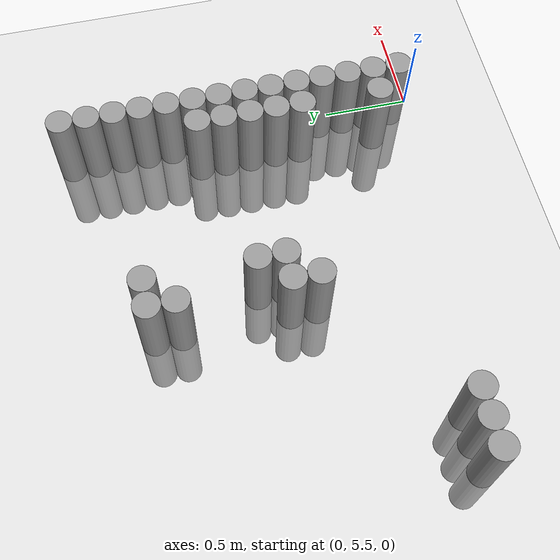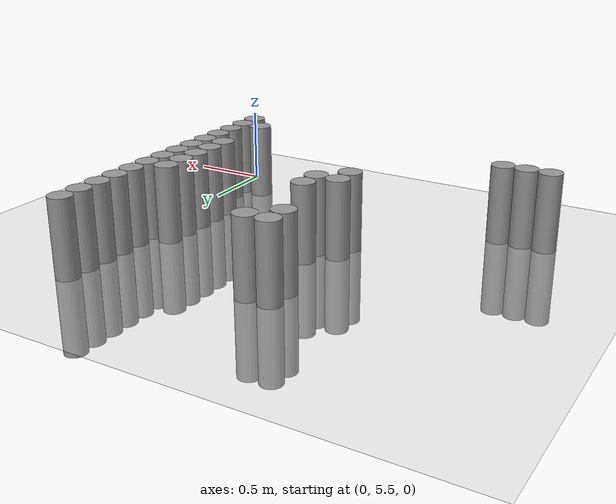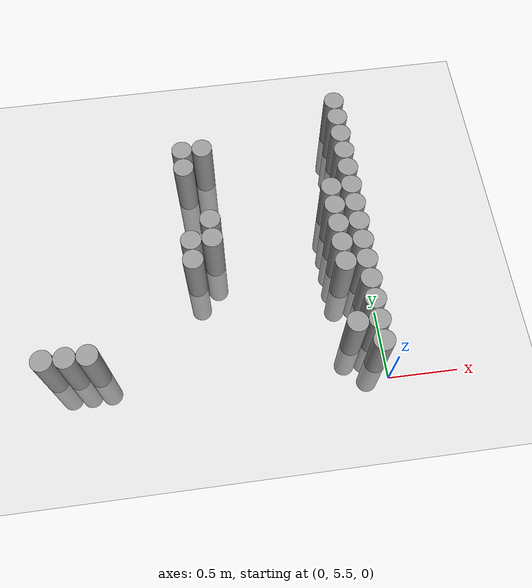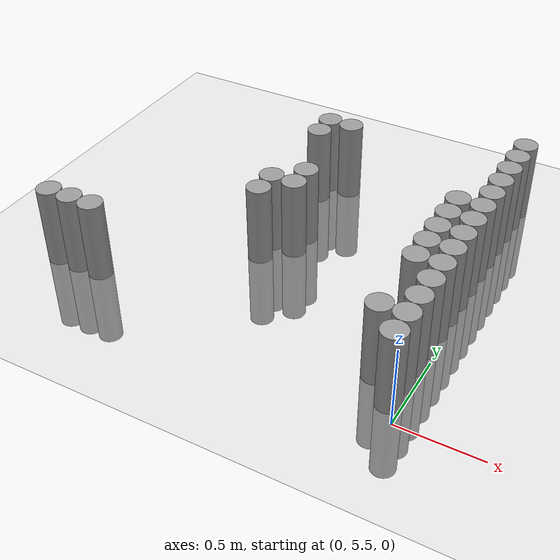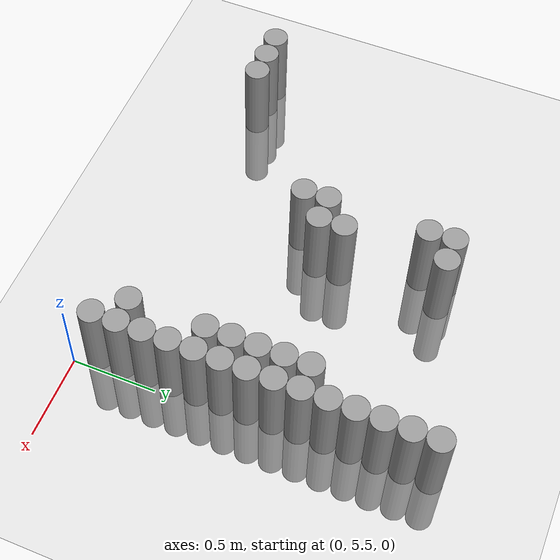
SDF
<sdf version="1.6">
 <world name="default">
  <model name="ground_plane">
   <static>1</static>
   <static>1</static>
   <link name="link">
    <collision name="collision">
     <geometry><plane><normal>0 0 1</normal><size>100 100</size></plane></geometry>
     <surface><friction><ode><mu>100</mu><mu2>50</mu2></ode></friction></surface>
    </collision>
    <visual name="visual">
     <cast_shadows>0</cast_shadows>
     <geometry><plane><normal>0 0 1</normal><size>100 100</size></plane></geometry>
     <material>
      <script><uri>file://media/materials/scripts/gazebo.material</uri><name>Gazebo/Grey</name></script>
     </material>
    </visual>
   </link>
  </model>
  <model name="unit_cylinder_169">
   <static>1</static>
   <pose>-2.325000 5.775000 0.000000 0.000000 0.000000 0.000000</pose>
   <link name="link">
    <inertial>
     <mass>1</mass>
     <inertia><ixx>0.145833</ixx><ixy>0</ixy><ixz>0</ixz><iyy>0.145833</iyy><iyz>0</iyz><izz>0.125</izz></inertia>
    </inertial>
    <collision name="collision">
     <geometry><cylinder><radius>0.075000</radius><length>1</length></cylinder></geometry>
    </collision>
    <visual name="visual">
     <geometry><cylinder><radius>0.075000</radius><length>1</length></cylinder></geometry>
     <material>
      <script><name>Gazebo/Grey</name><uri>file://media/materials/scripts/gazebo.material</uri></script>
     </material>
    </visual>
   </link>
  </model>
  <model name="unit_cylinder_174">
   <static>1</static>
   <pose>-2.175000 5.775000 0.000000 0.000000 0.000000 0.000000</pose>
   <link name="link">
    <inertial>
     <mass>1</mass>
     <inertia><ixx>0.145833</ixx><ixy>0</ixy><ixz>0</ixz><iyy>0.145833</iyy><iyz>0</iyz><izz>0.125</izz></inertia>
    </inertial>
    <collision name="collision">
     <geometry><cylinder><radius>0.075000</radius><length>1</length></cylinder></geometry>
    </collision>
    <visual name="visual">
     <geometry><cylinder><radius>0.075000</radius><length>1</length></cylinder></geometry>
     <material>
      <script><name>Gazebo/Grey</name><uri>file://media/materials/scripts/gazebo.material</uri></script>
     </material>
    </visual>
   </link>
  </model>
  <model name="unit_cylinder_177">
   <static>1</static>
   <pose>-2.025000 5.775000 0.000000 0.000000 0.000000 0.000000</pose>
   <link name="link">
    <inertial>
     <mass>1</mass>
     <inertia><ixx>0.145833</ixx><ixy>0</ixy><ixz>0</ixz><iyy>0.145833</iyy><iyz>0</iyz><izz>0.125</izz></inertia>
    </inertial>
    <collision name="collision">
     <geometry><cylinder><radius>0.075000</radius><length>1</length></cylinder></geometry>
    </collision>
    <visual name="visual">
     <geometry><cylinder><radius>0.075000</radius><length>1</length></cylinder></geometry>
     <material>
      <script><name>Gazebo/Grey</name><uri>file://media/materials/scripts/gazebo.material</uri></script>
     </material>
    </visual>
   </link>
  </model>
  <model name="unit_cylinder_183">
   <static>1</static>
   <pose>-1.275000 6.375000 0.000000 0.000000 0.000000 0.000000</pose>
   <link name="link">
    <inertial>
     <mass>1</mass>
     <inertia><ixx>0.145833</ixx><ixy>0</ixy><ixz>0</ixz><iyy>0.145833</iyy><iyz>0</iyz><izz>0.125</izz></inertia>
    </inertial>
    <collision name="collision">
     <geometry><cylinder><radius>0.075000</radius><length>1</length></cylinder></geometry>
    </collision>
    <visual name="visual">
     <geometry><cylinder><radius>0.075000</radius><length>1</length></cylinder></geometry>
     <material>
      <script><name>Gazebo/Grey</name><uri>file://media/materials/scripts/gazebo.material</uri></script>
     </material>
    </visual>
   </link>
  </model>
  <model name="unit_cylinder_184">
   <static>1</static>
   <pose>-1.275000 6.525000 0.000000 0.000000 0.000000 0.000000</pose>
   <link name="link">
    <inertial>
     <mass>1</mass>
     <inertia><ixx>0.145833</ixx><ixy>0</ixy><ixz>0</ixz><iyy>0.145833</iyy><iyz>0</iyz><izz>0.125</izz></inertia>
    </inertial>
    <collision name="collision">
     <geometry><cylinder><radius>0.075000</radius><length>1</length></cylinder></geometry>
    </collision>
    <visual name="visual">
     <geometry><cylinder><radius>0.075000</radius><length>1</length></cylinder></geometry>
     <material>
      <script><name>Gazebo/Grey</name><uri>file://media/materials/scripts/gazebo.material</uri></script>
     </material>
    </visual>
   </link>
  </model>
  <model name="unit_cylinder_185">
   <static>1</static>
   <pose>-1.275000 7.125000 0.000000 0.000000 0.000000 0.000000</pose>
   <link name="link">
    <inertial>
     <mass>1</mass>
     <inertia><ixx>0.145833</ixx><ixy>0</ixy><ixz>0</ixz><iyy>0.145833</iyy><iyz>0</iyz><izz>0.125</izz></inertia>
    </inertial>
    <collision name="collision">
     <geometry><cylinder><radius>0.075000</radius><length>1</length></cylinder></geometry>
    </collision>
    <visual name="visual">
     <geometry><cylinder><radius>0.075000</radius><length>1</length></cylinder></geometry>
     <material>
      <script><name>Gazebo/Grey</name><uri>file://media/materials/scripts/gazebo.material</uri></script>
     </material>
    </visual>
   </link>
  </model>
  <model name="unit_cylinder_186">
   <static>1</static>
   <pose>-1.275000 7.275000 0.000000 0.000000 0.000000 0.000000</pose>
   <link name="link">
    <inertial>
     <mass>1</mass>
     <inertia><ixx>0.145833</ixx><ixy>0</ixy><ixz>0</ixz><iyy>0.145833</iyy><iyz>0</iyz><izz>0.125</izz></inertia>
    </inertial>
    <collision name="collision">
     <geometry><cylinder><radius>0.075000</radius><length>1</length></cylinder></geometry>
    </collision>
    <visual name="visual">
     <geometry><cylinder><radius>0.075000</radius><length>1</length></cylinder></geometry>
     <material>
      <script><name>Gazebo/Grey</name><uri>file://media/materials/scripts/gazebo.material</uri></script>
     </material>
    </visual>
   </link>
  </model>
  <model name="unit_cylinder_187">
   <static>1</static>
   <pose>-1.125000 6.525000 0.000000 0.000000 0.000000 0.000000</pose>
   <link name="link">
    <inertial>
     <mass>1</mass>
     <inertia><ixx>0.145833</ixx><ixy>0</ixy><ixz>0</ixz><iyy>0.145833</iyy><iyz>0</iyz><izz>0.125</izz></inertia>
    </inertial>
    <collision name="collision">
     <geometry><cylinder><radius>0.075000</radius><length>1</length></cylinder></geometry>
    </collision>
    <visual name="visual">
     <geometry><cylinder><radius>0.075000</radius><length>1</length></cylinder></geometry>
     <material>
      <script><name>Gazebo/Grey</name><uri>file://media/materials/scripts/gazebo.material</uri></script>
     </material>
    </visual>
   </link>
  </model>
  <model name="unit_cylinder_188">
   <static>1</static>
   <pose>-1.125000 6.675000 0.000000 0.000000 0.000000 0.000000</pose>
   <link name="link">
    <inertial>
     <mass>1</mass>
     <inertia><ixx>0.145833</ixx><ixy>0</ixy><ixz>0</ixz><iyy>0.145833</iyy><iyz>0</iyz><izz>0.125</izz></inertia>
    </inertial>
    <collision name="collision">
     <geometry><cylinder><radius>0.075000</radius><length>1</length></cylinder></geometry>
    </collision>
    <visual name="visual">
     <geometry><cylinder><radius>0.075000</radius><length>1</length></cylinder></geometry>
     <material>
      <script><name>Gazebo/Grey</name><uri>file://media/materials/scripts/gazebo.material</uri></script>
     </material>
    </visual>
   </link>
  </model>
  <model name="unit_cylinder_189">
   <static>1</static>
   <pose>-1.125000 7.275000 0.000000 0.000000 0.000000 0.000000</pose>
   <link name="link">
    <inertial>
     <mass>1</mass>
     <inertia><ixx>0.145833</ixx><ixy>0</ixy><ixz>0</ixz><iyy>0.145833</iyy><iyz>0</iyz><izz>0.125</izz></inertia>
    </inertial>
    <collision name="collision">
     <geometry><cylinder><radius>0.075000</radius><length>1</length></cylinder></geometry>
    </collision>
    <visual name="visual">
     <geometry><cylinder><radius>0.075000</radius><length>1</length></cylinder></geometry>
     <material>
      <script><name>Gazebo/Grey</name><uri>file://media/materials/scripts/gazebo.material</uri></script>
     </material>
    </visual>
   </link>
  </model>
  <model name="unit_cylinder_200">
   <static>1</static>
   <pose>-0.225000 5.775000 0.000000 0.000000 0.000000 0.000000</pose>
   <link name="link">
    <inertial>
     <mass>1</mass>
     <inertia><ixx>0.145833</ixx><ixy>0</ixy><ixz>0</ixz><iyy>0.145833</iyy><iyz>0</iyz><izz>0.125</izz></inertia>
    </inertial>
    <collision name="collision">
     <geometry><cylinder><radius>0.075000</radius><length>1</length></cylinder></geometry>
    </collision>
    <visual name="visual">
     <geometry><cylinder><radius>0.075000</radius><length>1</length></cylinder></geometry>
     <material>
      <script><name>Gazebo/Grey</name><uri>file://media/materials/scripts/gazebo.material</uri></script>
     </material>
    </visual>
   </link>
  </model>
  <model name="unit_cylinder_201">
   <static>1</static>
   <pose>-0.225000 6.225000 0.000000 0.000000 0.000000 0.000000</pose>
   <link name="link">
    <inertial>
     <mass>1</mass>
     <inertia><ixx>0.145833</ixx><ixy>0</ixy><ixz>0</ixz><iyy>0.145833</iyy><iyz>0</iyz><izz>0.125</izz></inertia>
    </inertial>
    <collision name="collision">
     <geometry><cylinder><radius>0.075000</radius><length>1</length></cylinder></geometry>
    </collision>
    <visual name="visual">
     <geometry><cylinder><radius>0.075000</radius><length>1</length></cylinder></geometry>
     <material>
      <script><name>Gazebo/Grey</name><uri>file://media/materials/scripts/gazebo.material</uri></script>
     </material>
    </visual>
   </link>
  </model>
  <model name="unit_cylinder_202">
   <static>1</static>
   <pose>-0.225000 6.375000 0.000000 0.000000 0.000000 0.000000</pose>
   <link name="link">
    <inertial>
     <mass>1</mass>
     <inertia><ixx>0.145833</ixx><ixy>0</ixy><ixz>0</ixz><iyy>0.145833</iyy><iyz>0</iyz><izz>0.125</izz></inertia>
    </inertial>
    <collision name="collision">
     <geometry><cylinder><radius>0.075000</radius><length>1</length></cylinder></geometry>
    </collision>
    <visual name="visual">
     <geometry><cylinder><radius>0.075000</radius><length>1</length></cylinder></geometry>
     <material>
      <script><name>Gazebo/Grey</name><uri>file://media/materials/scripts/gazebo.material</uri></script>
     </material>
    </visual>
   </link>
  </model>
  <model name="unit_cylinder_203">
   <static>1</static>
   <pose>-0.225000 6.525000 0.000000 0.000000 0.000000 0.000000</pose>
   <link name="link">
    <inertial>
     <mass>1</mass>
     <inertia><ixx>0.145833</ixx><ixy>0</ixy><ixz>0</ixz><iyy>0.145833</iyy><iyz>0</iyz><izz>0.125</izz></inertia>
    </inertial>
    <collision name="collision">
     <geometry><cylinder><radius>0.075000</radius><length>1</length></cylinder></geometry>
    </collision>
    <visual name="visual">
     <geometry><cylinder><radius>0.075000</radius><length>1</length></cylinder></geometry>
     <material>
      <script><name>Gazebo/Grey</name><uri>file://media/materials/scripts/gazebo.material</uri></script>
     </material>
    </visual>
   </link>
  </model>
  <model name="unit_cylinder_204">
   <static>1</static>
   <pose>-0.225000 6.675000 0.000000 0.000000 0.000000 0.000000</pose>
   <link name="link">
    <inertial>
     <mass>1</mass>
     <inertia><ixx>0.145833</ixx><ixy>0</ixy><ixz>0</ixz><iyy>0.145833</iyy><iyz>0</iyz><izz>0.125</izz></inertia>
    </inertial>
    <collision name="collision">
     <geometry><cylinder><radius>0.075000</radius><length>1</length></cylinder></geometry>
    </collision>
    <visual name="visual">
     <geometry><cylinder><radius>0.075000</radius><length>1</length></cylinder></geometry>
     <material>
      <script><name>Gazebo/Grey</name><uri>file://media/materials/scripts/gazebo.material</uri></script>
     </material>
    </visual>
   </link>
  </model>
  <model name="unit_cylinder_205">
   <static>1</static>
   <pose>-0.225000 6.825000 0.000000 0.000000 0.000000 0.000000</pose>
   <link name="link">
    <inertial>
     <mass>1</mass>
     <inertia><ixx>0.145833</ixx><ixy>0</ixy><ixz>0</ixz><iyy>0.145833</iyy><iyz>0</iyz><izz>0.125</izz></inertia>
    </inertial>
    <collision name="collision">
     <geometry><cylinder><radius>0.075000</radius><length>1</length></cylinder></geometry>
    </collision>
    <visual name="visual">
     <geometry><cylinder><radius>0.075000</radius><length>1</length></cylinder></geometry>
     <material>
      <script><name>Gazebo/Grey</name><uri>file://media/materials/scripts/gazebo.material</uri></script>
     </material>
    </visual>
   </link>
  </model>
  <model name="unit_cylinder_210">
   <static>1</static>
   <pose>-0.075000 5.625000 0.000000 0.000000 0.000000 0.000000</pose>
   <link name="link">
    <inertial>
     <mass>1</mass>
     <inertia><ixx>0.145833</ixx><ixy>0</ixy><ixz>0</ixz><iyy>0.145833</iyy><iyz>0</iyz><izz>0.125</izz></inertia>
    </inertial>
    <collision name="collision">
     <geometry><cylinder><radius>0.075000</radius><length>1</length></cylinder></geometry>
    </collision>
    <visual name="visual">
     <geometry><cylinder><radius>0.075000</radius><length>1</length></cylinder></geometry>
     <material>
      <script><name>Gazebo/Grey</name><uri>file://media/materials/scripts/gazebo.material</uri></script>
     </material>
    </visual>
   </link>
  </model>
  <model name="unit_cylinder_211">
   <static>1</static>
   <pose>-0.075000 5.775000 0.000000 0.000000 0.000000 0.000000</pose>
   <link name="link">
    <inertial>
     <mass>1</mass>
     <inertia><ixx>0.145833</ixx><ixy>0</ixy><ixz>0</ixz><iyy>0.145833</iyy><iyz>0</iyz><izz>0.125</izz></inertia>
    </inertial>
    <collision name="collision">
     <geometry><cylinder><radius>0.075000</radius><length>1</length></cylinder></geometry>
    </collision>
    <visual name="visual">
     <geometry><cylinder><radius>0.075000</radius><length>1</length></cylinder></geometry>
     <material>
      <script><name>Gazebo/Grey</name><uri>file://media/materials/scripts/gazebo.material</uri></script>
     </material>
    </visual>
   </link>
  </model>
  <model name="unit_cylinder_212">
   <static>1</static>
   <pose>-0.075000 5.925000 0.000000 0.000000 0.000000 0.000000</pose>
   <link name="link">
    <inertial>
     <mass>1</mass>
     <inertia><ixx>0.145833</ixx><ixy>0</ixy><ixz>0</ixz><iyy>0.145833</iyy><iyz>0</iyz><izz>0.125</izz></inertia>
    </inertial>
    <collision name="collision">
     <geometry><cylinder><radius>0.075000</radius><length>1</length></cylinder></geometry>
    </collision>
    <visual name="visual">
     <geometry><cylinder><radius>0.075000</radius><length>1</length></cylinder></geometry>
     <material>
      <script><name>Gazebo/Grey</name><uri>file://media/materials/scripts/gazebo.material</uri></script>
     </material>
    </visual>
   </link>
  </model>
  <model name="unit_cylinder_213">
   <static>1</static>
   <pose>-0.075000 6.075000 0.000000 0.000000 0.000000 0.000000</pose>
   <link name="link">
    <inertial>
     <mass>1</mass>
     <inertia><ixx>0.145833</ixx><ixy>0</ixy><ixz>0</ixz><iyy>0.145833</iyy><iyz>0</iyz><izz>0.125</izz></inertia>
    </inertial>
    <collision name="collision">
     <geometry><cylinder><radius>0.075000</radius><length>1</length></cylinder></geometry>
    </collision>
    <visual name="visual">
     <geometry><cylinder><radius>0.075000</radius><length>1</length></cylinder></geometry>
     <material>
      <script><name>Gazebo/Grey</name><uri>file://media/materials/scripts/gazebo.material</uri></script>
     </material>
    </visual>
   </link>
  </model>
  <model name="unit_cylinder_214">
   <static>1</static>
   <pose>-0.075000 6.225000 0.000000 0.000000 0.000000 0.000000</pose>
   <link name="link">
    <inertial>
     <mass>1</mass>
     <inertia><ixx>0.145833</ixx><ixy>0</ixy><ixz>0</ixz><iyy>0.145833</iyy><iyz>0</iyz><izz>0.125</izz></inertia>
    </inertial>
    <collision name="collision">
     <geometry><cylinder><radius>0.075000</radius><length>1</length></cylinder></geometry>
    </collision>
    <visual name="visual">
     <geometry><cylinder><radius>0.075000</radius><length>1</length></cylinder></geometry>
     <material>
      <script><name>Gazebo/Grey</name><uri>file://media/materials/scripts/gazebo.material</uri></script>
     </material>
    </visual>
   </link>
  </model>
  <model name="unit_cylinder_215">
   <static>1</static>
   <pose>-0.075000 6.375000 0.000000 0.000000 0.000000 0.000000</pose>
   <link name="link">
    <inertial>
     <mass>1</mass>
     <inertia><ixx>0.145833</ixx><ixy>0</ixy><ixz>0</ixz><iyy>0.145833</iyy><iyz>0</iyz><izz>0.125</izz></inertia>
    </inertial>
    <collision name="collision">
     <geometry><cylinder><radius>0.075000</radius><length>1</length></cylinder></geometry>
    </collision>
    <visual name="visual">
     <geometry><cylinder><radius>0.075000</radius><length>1</length></cylinder></geometry>
     <material>
      <script><name>Gazebo/Grey</name><uri>file://media/materials/scripts/gazebo.material</uri></script>
     </material>
    </visual>
   </link>
  </model>
  <model name="unit_cylinder_216">
   <static>1</static>
   <pose>-0.075000 6.525000 0.000000 0.000000 0.000000 0.000000</pose>
   <link name="link">
    <inertial>
     <mass>1</mass>
     <inertia><ixx>0.145833</ixx><ixy>0</ixy><ixz>0</ixz><iyy>0.145833</iyy><iyz>0</iyz><izz>0.125</izz></inertia>
    </inertial>
    <collision name="collision">
     <geometry><cylinder><radius>0.075000</radius><length>1</length></cylinder></geometry>
    </collision>
    <visual name="visual">
     <geometry><cylinder><radius>0.075000</radius><length>1</length></cylinder></geometry>
     <material>
      <script><name>Gazebo/Grey</name><uri>file://media/materials/scripts/gazebo.material</uri></script>
     </material>
    </visual>
   </link>
  </model>
  <model name="unit_cylinder_217">
   <static>1</static>
   <pose>-0.075000 6.675000 0.000000 0.000000 0.000000 0.000000</pose>
   <link name="link">
    <inertial>
     <mass>1</mass>
     <inertia><ixx>0.145833</ixx><ixy>0</ixy><ixz>0</ixz><iyy>0.145833</iyy><iyz>0</iyz><izz>0.125</izz></inertia>
    </inertial>
    <collision name="collision">
     <geometry><cylinder><radius>0.075000</radius><length>1</length></cylinder></geometry>
    </collision>
    <visual name="visual">
     <geometry><cylinder><radius>0.075000</radius><length>1</length></cylinder></geometry>
     <material>
      <script><name>Gazebo/Grey</name><uri>file://media/materials/scripts/gazebo.material</uri></script>
     </material>
    </visual>
   </link>
  </model>
  <model name="unit_cylinder_218">
   <static>1</static>
   <pose>-0.075000 6.825000 0.000000 0.000000 0.000000 0.000000</pose>
   <link name="link">
    <inertial>
     <mass>1</mass>
     <inertia><ixx>0.145833</ixx><ixy>0</ixy><ixz>0</ixz><iyy>0.145833</iyy><iyz>0</iyz><izz>0.125</izz></inertia>
    </inertial>
    <collision name="collision">
     <geometry><cylinder><radius>0.075000</radius><length>1</length></cylinder></geometry>
    </collision>
    <visual name="visual">
     <geometry><cylinder><radius>0.075000</radius><length>1</length></cylinder></geometry>
     <material>
      <script><name>Gazebo/Grey</name><uri>file://media/materials/scripts/gazebo.material</uri></script>
     </material>
    </visual>
   </link>
  </model>
  <model name="unit_cylinder_219">
   <static>1</static>
   <pose>-0.075000 6.975000 0.000000 0.000000 0.000000 0.000000</pose>
   <link name="link">
    <inertial>
     <mass>1</mass>
     <inertia><ixx>0.145833</ixx><ixy>0</ixy><ixz>0</ixz><iyy>0.145833</iyy><iyz>0</iyz><izz>0.125</izz></inertia>
    </inertial>
    <collision name="collision">
     <geometry><cylinder><radius>0.075000</radius><length>1</length></cylinder></geometry>
    </collision>
    <visual name="visual">
     <geometry><cylinder><radius>0.075000</radius><length>1</length></cylinder></geometry>
     <material>
      <script><name>Gazebo/Grey</name><uri>file://media/materials/scripts/gazebo.material</uri></script>
     </material>
    </visual>
   </link>
  </model>
  <model name="unit_cylinder_220">
   <static>1</static>
   <pose>-0.075000 7.125000 0.000000 0.000000 0.000000 0.000000</pose>
   <link name="link">
    <inertial>
     <mass>1</mass>
     <inertia><ixx>0.145833</ixx><ixy>0</ixy><ixz>0</ixz><iyy>0.145833</iyy><iyz>0</iyz><izz>0.125</izz></inertia>
    </inertial>
    <collision name="collision">
     <geometry><cylinder><radius>0.075000</radius><length>1</length></cylinder></geometry>
    </collision>
    <visual name="visual">
     <geometry><cylinder><radius>0.075000</radius><length>1</length></cylinder></geometry>
     <material>
      <script><name>Gazebo/Grey</name><uri>file://media/materials/scripts/gazebo.material</uri></script>
     </material>
    </visual>
   </link>
  </model>
  <model name="unit_cylinder_221">
   <static>1</static>
   <pose>-0.075000 7.275000 0.000000 0.000000 0.000000 0.000000</pose>
   <link name="link">
    <inertial>
     <mass>1</mass>
     <inertia><ixx>0.145833</ixx><ixy>0</ixy><ixz>0</ixz><iyy>0.145833</iyy><iyz>0</iyz><izz>0.125</izz></inertia>
    </inertial>
    <collision name="collision">
     <geometry><cylinder><radius>0.075000</radius><length>1</length></cylinder></geometry>
    </collision>
    <visual name="visual">
     <geometry><cylinder><radius>0.075000</radius><length>1</length></cylinder></geometry>
     <material>
      <script><name>Gazebo/Grey</name><uri>file://media/materials/scripts/gazebo.material</uri></script>
     </material>
    </visual>
   </link>
  </model>
  <model name="unit_cylinder_222">
   <static>1</static>
   <pose>-0.075000 7.425000 0.000000 0.000000 0.000000 0.000000</pose>
   <link name="link">
    <inertial>
     <mass>1</mass>
     <inertia><ixx>0.145833</ixx><ixy>0</ixy><ixz>0</ixz><iyy>0.145833</iyy><iyz>0</iyz><izz>0.125</izz></inertia>
    </inertial>
    <collision name="collision">
     <geometry><cylinder><radius>0.075000</radius><length>1</length></cylinder></geometry>
    </collision>
    <visual name="visual">
     <geometry><cylinder><radius>0.075000</radius><length>1</length></cylinder></geometry>
     <material>
      <script><name>Gazebo/Grey</name><uri>file://media/materials/scripts/gazebo.material</uri></script>
     </material>
    </visual>
   </link>
  </model>
  <model name="unit_cylinder_223">
   <static>1</static>
   <pose>-0.075000 7.575000 0.000000 0.000000 0.000000 0.000000</pose>
   <link name="link">
    <inertial>
     <mass>1</mass>
     <inertia><ixx>0.145833</ixx><ixy>0</ixy><ixz>0</ixz><iyy>0.145833</iyy><iyz>0</iyz><izz>0.125</izz></inertia>
    </inertial>
    <collision name="collision">
     <geometry><cylinder><radius>0.075000</radius><length>1</length></cylinder></geometry>
    </collision>
    <visual name="visual">
     <geometry><cylinder><radius>0.075000</radius><length>1</length></cylinder></geometry>
     <material>
      <script><name>Gazebo/Grey</name><uri>file://media/materials/scripts/gazebo.material</uri></script>
     </material>
    </visual>
   </link>
  </model>
 </world>
</sdf>
